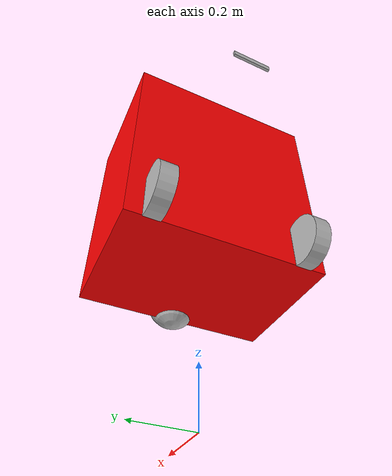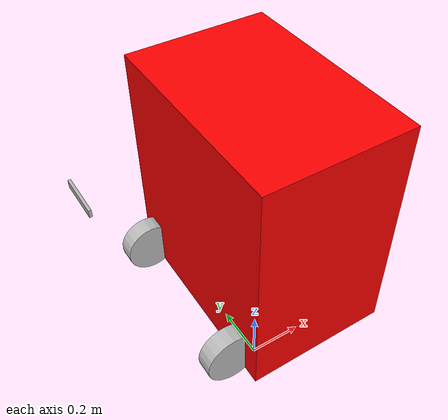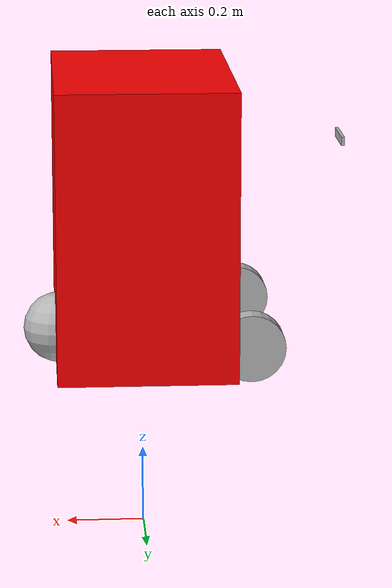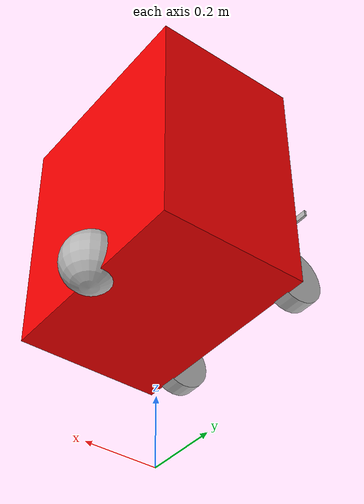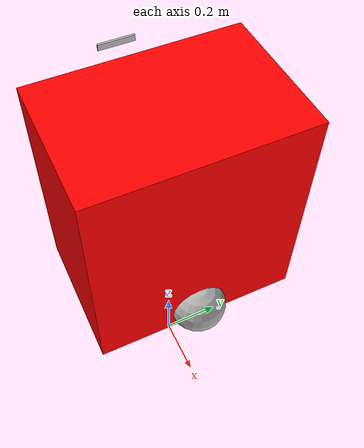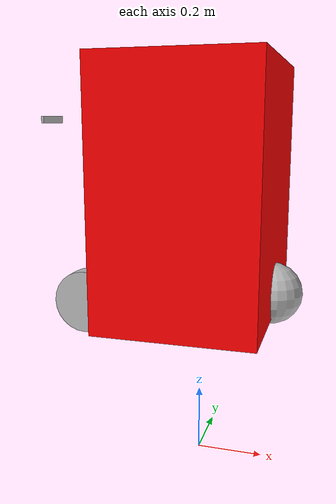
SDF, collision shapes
<?xml version='1.0'?>
<sdf version='1.5'>
  <model name='atirobot'>
  <static>false</static>

  ****************** ROBOT BASE FOOTPRINT ***************************
  <pose>0.0 0.0 0.73199 0.0 0.0 0.0</pose>
  <link name="base_footprint"/>

  <link name='base_link'>

    <inertial>
      <mass>20.0</mass>

    </inertial>

    <collision name="base_collision">
      <pose>0 0 0.1 0 0 0</pose>
      <geometry>
        <box>
          <size>0.45 0.665 0.73</size>
        </box>
      </geometry>
    </collision>

    <visual name="base_visual">
    <pose>0 0 0.47 0 0 3.141592654</pose>

      <geometry>
        <mesh>
          <uri>model://ati_bot_description/meshes/base_link.stl</uri>
          <scale>1.0 1.0 1.0</scale>
        </mesh>
      </geometry>
      <material>
        <ambient>1.0 0.0 0.0 1.0</ambient>
        <diffuse>1.0 0.0 0.0 1.0</diffuse>
        <specular>0.0 0.0 0.0 1.0</specular>
        <emissive>0.0 0.0 0.0 1.0</emissive>
      </material>
    </visual>

  </link>

<!-- ****************************** Realsense Camera *****************************    -->
  <link name="realsense_link">

    <inertial>
      <pose>-0.5 0 0.3 0 0 0</pose>

      <inertia>
        <ixx>0.001</ixx>
        <ixy>0.000</ixy>
        <ixz>0.000</ixz>
        <iyy>0.001</iyy>
        <iyz>0.000</iyz>
        <izz>0.001</izz>
      </inertia>
      <mass>0.035</mass>
    </inertial>

    <collision name="collision">
      <pose>0 0.047 0 0 0 0</pose>
      <geometry>
        <box>
          <size>0.008 0.130 0.022</size>
        </box>
      </geometry>
    </collision>
    <pose>-0.5 0 0.3 0 0 0</pose>

    <sensor name="intel_realsense_r200_depth" type="depth">
      <always_on>1</always_on>
      <update_rate>1</update_rate>
      <pose>0 0 0 0 0 3.14159265359</pose>

      <camera name="realsense_depth_camera">
        <horizontal_fov>1.5</horizontal_fov>
      </camera>

      <plugin name="intel_realsense_r200_depth_driver" filename="libgazebo_ros_camera.so">
        <ros>
          <imageTopicName>/intel_realsense_r200_depth/color/image_raw</imageTopicName>
          <cameraInfoTopicName>/intel_realsense_r200_depth/color/camera_info</cameraInfoTopicName>
          <depthImageTopicName>/intel_realsense_r200_depth/depth/image_raw</depthImageTopicName>
          <depthImageCameraInfoTopicName>/intel_realsense_r200_depth/depth/camera_info</depthImageCameraInfoTopicName>
          <pointCloudTopicName>/intel_realsense_r200_depth/points</pointCloudTopicName>
        </ros>

        <camera_name>intel_realsense_r200_depth</camera_name>
        <frame_name>realsense_depth_frame</frame_name>
        <hack_baseline>0.07</hack_baseline>
        <min_depth>0.0001</min_depth>
      </plugin>
    </sensor>

  <sensor name="intel_realsense_r200_rgb" type="camera">
      <always_on>true</always_on>
      <visualize>true</visualize>
      <update_rate>30</update_rate>
      <pose>0 0 0 0 0 3.14159265359</pose>

      <camera name="realsense_rgb_camera">
          <horizontal_fov>1.5</horizontal_fov>
          <image>
            <width>1920</width>
            <height>1080</height>
            <format>R8G8B8</format>
          </image>
          <clip>
            <near>0.02</near>
            <far>300</far>
          </clip>
          <noise>
            <type>gaussian</type>
            <mean>0.0</mean>
            <stddev>0.007</stddev>
          </noise>
      </camera>
        <plugin name="intel_realsense_r200_rgb_driver" filename="libgazebo_ros_camera.so">
            <ros>
            </ros>
            <camera_name>intel_realsense_r200_rgb</camera_name>
            <frame_name>realsense_rgb_frame</frame_name>
            <hack_baseline>0.07</hack_baseline>
        </plugin>
    </sensor>
  </link>
  <!-- *********************** DRIVE WHEELS ******************************  -->

  <link name="drivewhl_l_link">

    <pose>-0.261 0.25 -0.19 0 1.570796 1.570796</pose>
    <inertial>
      <inertia>
        <ixx>0.001</ixx>
        <ixy>0.000</ixy>
        <ixz>0.000</ixz>
        <iyy>0.001</iyy>
        <iyz>0.000</iyz>
        <izz>0.001</izz>
      </inertia>
      <mass>20.0</mass>
    </inertial>

    <collision name="drivewhl_l_collision">
      <geometry>
        <cylinder>
          <radius>0.085</radius>
          <length>0.055</length>
        </cylinder>
      </geometry>
    </collision>

    <visual name="drivewhl_l_visual">
      <geometry>
        <cylinder>
          <radius>0.085</radius>
          <length>0.055</length>
        </cylinder>
      </geometry>
    </visual>

</link>

<link name='drivewhl_r_link'>

    <pose>-0.261 -0.25 -0.19 0 1.570796 1.570796</pose>
    <inertial>
      <inertia>
        <ixx>0.001</ixx>
        <ixy>0.000</ixy>
        <ixz>0.000</ixz>
        <iyy>0.001</iyy>
        <iyz>0.000</iyz>
        <izz>0.001</izz>
      </inertia>
      <mass>20.0</mass>
    </inertial>

    <collision name="drivewhl_r_collision">
      <geometry>
        <cylinder>
          <radius>0.085</radius>
          <length>0.055</length>
        </cylinder>
      </geometry>
    </collision>

    <visual name="drivewhl_r_visual">
      <geometry>
        <cylinder>
          <radius>0.085</radius>
          <length>0.055</length>
        </cylinder>
      </geometry>
    </visual>

</link>

<!-- *********************** CASTER WHEEL ******************************  -->
  <link name='front_caster'>
    <pose>0.217 0 -0.2 0 0 0</pose>
    <inertial>
      <inertia>
        <ixx>0.001</ixx>
        <ixy>0.000</ixy>
        <ixz>0.000</ixz>
        <iyy>0.001</iyy>
        <iyz>0.000</iyz>
        <izz>0.001</izz>
      </inertia>
      <mass>20.0</mass>
    </inertial>
    <collision name='collision'>
      <geometry>
        <sphere>
          <radius>0.09</radius>
        </sphere>
      </geometry>
      <surface>
        <friction>
          <ode>
            <mu>0.01</mu>
            <mu2>0.01</mu2>
            <slip1>1.0</slip1>
            <slip2>1.0</slip2>
          </ode>
        </friction>
      </surface>
    </collision>
    <visual name="front_caster_visual">
      <geometry>
        <sphere>
          <radius>0.09</radius>
        </sphere>
      </geometry>
    </visual>
  </link>

  <!-- joints -->

  <joint name="base_joint" type="fixed">
    <parent>base_footprint</parent>
    <child>base_link</child>
    <pose>0 0 0 0 0 0</pose>
  </joint>

  <joint name="drivewhl_l_joint" type="revolute">
    <parent>base_link</parent>
    <child>drivewhl_l_link</child>

    <axis>
      <xyz>0 0 -1</xyz>
      <limit>
        <effort>1</effort>
        <velocity>1</velocity>
      </limit>
    </axis>
  </joint>

  <joint name="drivewhl_r_joint" type="revolute">
    <parent>base_link</parent>
    <child>drivewhl_r_link</child>
    <axis>
      <xyz>0 0 -1</xyz>
      <limit>
        <effort>1</effort>
        <velocity>1</velocity>
      </limit>
    </axis>
  </joint>

  <joint name='caster_joint' type='fixed'>
    <parent>base_link</parent>
    <child>front_caster</child>
    <pose>0 0 0 0 0 0</pose>
  </joint>

  <joint name="camera_joint" type="fixed">
    <parent>base_link</parent>
    <child>realsense_link</child>
    <pose>0 0 0 0 0 0</pose>
  </joint>

  <!-- *********************** WHEEL ODOMETRY ***************************    -->
  <plugin name="basic_mobile_bot_diff_drive" filename="libgazebo_ros_diff_drive.so">

    <update_rate>30</update_rate>

    <!-- wheels -->
    <left_joint>drivewhl_l_joint</left_joint>
    <right_joint>drivewhl_r_joint</right_joint>

    <!-- kinematics -->
    <wheel_separation>0.52</wheel_separation>
    <wheel_diameter>0.28</wheel_diameter>

    <!-- limits -->
    <max_wheel_torque>20</max_wheel_torque>
    <max_wheel_acceleration>1.0</max_wheel_acceleration>

    <!-- Receive velocity commands on this ROS topic -->
    <command_topic>cmd_vel</command_topic>

    <!-- output -->
    <!-- When false, publish no wheel odometry data to a ROS topic -->
    <publish_odom>true</publish_odom>

    <!-- When true, publish coordinate transform from odom to base_footprint -->
    <!-- I usually use the robot_localization package to publish this transform -->
    <publish_odom_tf>false</publish_odom_tf>

    <!-- When true, publish coordinate transform from base_link to the wheels -->
    <!-- The robot_state_publisher package is often used to publish this transform -->
    <publish_wheel_tf>false</publish_wheel_tf>

    <odometry_topic>odom</odometry_topic>
    <odometry_frame>odom</odometry_frame>
    <robot_base_frame>base_footprint</robot_base_frame>

    <!-- Odometry source, 0 for ENCODER, 1 for base_footprint, defaults to base_footprint -->
    <odometry_source>1</odometry_source>

    <!-- Change the ROS topic we will publish the odometry data to -->
    <ros>
      <remapping>odom:=wheel/odometry</remapping>
    </ros>

  </plugin>

  <!-- *********************** JOINT STATE PUBLISHER *********************   -->

  <plugin name="basic_mobile_bot_joint_state" filename="libgazebo_ros_joint_state_publisher.so">
    <ros>
      <remapping>~/out:=joint_states</remapping>
    </ros>
    <update_rate>30</update_rate>
    <joint_name>drivewhl_l_joint</joint_name>
    <joint_name>drivewhl_r_joint</joint_name>
  </plugin>

  </model>
</sdf>
